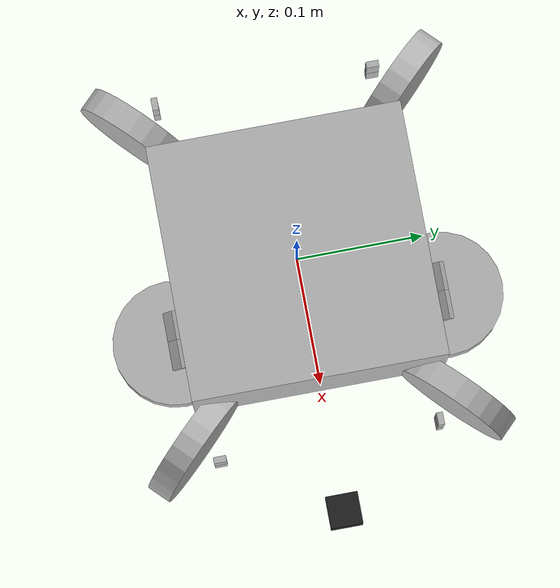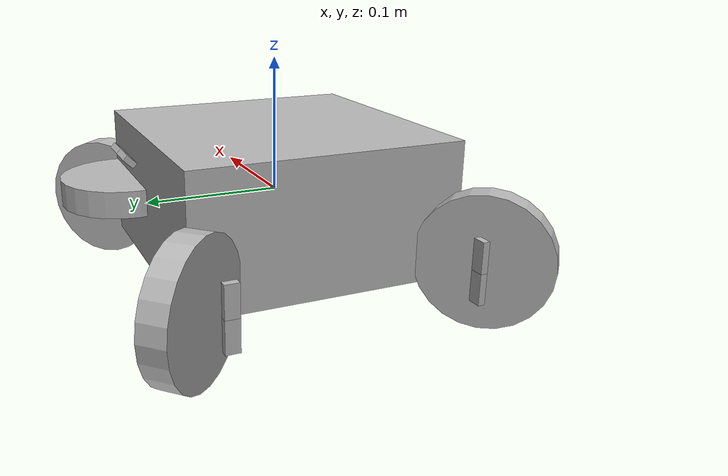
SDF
<sdf version='1.11'>
  <model name='BlueRov2'>
    <link name='base_link'>
      <inertial>
        <pose>1.0777634075990091e-07 0 -0.099998704461718352 0 0 0</pose>
        <mass>9.0001199999999955</mass>
        <inertia>
          <ixx>1.0010225034748941</ixx>
          <ixy>1.3552527156068811e-20</ixy>
          <ixz>-9.6998743327866735e-08</ixz>
          <iyy>1.001202477519789</iyy>
          <iyz>0</iyz>
          <izz>1.000842620044895</izz>
        </inertia>
      </inertial>
      <collision name='base_link_collision'>
        <pose>0 0 0 0 0 0</pose>
        <geometry>
          <box>
            <size>0.29999999999999999 0.29999999999999999 0.10000000000000001</size>
          </box>
        </geometry>
      </collision>
      <visual name='base_link_visual'>
        <pose>0 0 0 0 0 0</pose>
        <geometry>
          <box>
            <size>0.20000000000000001 0.20000000000000001 0.10000000000000001</size>
          </box>
        </geometry>
      </visual>
      <visual name='base_link_fixed_joint_lump__cil_visual_1'>
        <pose>0.12500000091892241 -0.10500000091892241 -0.028499999999999991 2.3561944767948968 1.5707963267948966 0</pose>
        <geometry>
          <cylinder>
            <length>0.02</length>
            <radius>0.048500000000000001</radius>
          </cylinder>
        </geometry>
      </visual>
      <visual name='base_link_fixed_joint_lump__cil_visual_2'>
        <pose>0.1249999990810776 0.1049999990810777 -0.028499999999999991 -2.3561944232051029 1.5707963267948966 0</pose>
        <geometry>
          <cylinder>
            <length>0.02</length>
            <radius>0.048500000000000001</radius>
          </cylinder>
        </geometry>
      </visual>
      <visual name='base_link_fixed_joint_lump__cil_visual_3'>
        <pose>-0.12499999908108 -0.1049999990810753 -0.028499999999999991 0.7853955767948968 1.5707963267948966 0</pose>
        <geometry>
          <cylinder>
            <length>0.02</length>
            <radius>0.048500000000000001</radius>
          </cylinder>
        </geometry>
      </visual>
      <visual name='base_link_fixed_joint_lump__cil_visual_4'>
        <pose>-0.1250000009189223 0.10500000091892241 -0.028499999999999991 -0.78539812320510305 1.5707963267948966 0</pose>
        <geometry>
          <cylinder>
            <length>0.02</length>
            <radius>0.048500000000000001</radius>
          </cylinder>
        </geometry>
      </visual>
      <visual name='base_link_fixed_joint_lump__cil_visual_5'>
        <pose>0.048500000000000001 -0.105 0 3.1415926000000001 0 0</pose>
        <geometry>
          <cylinder>
            <length>0.02</length>
            <radius>0.048500000000000001</radius>
          </cylinder>
        </geometry>
      </visual>
      <visual name='base_link_fixed_joint_lump__cil_visual_6'>
        <pose>0.048500000000000001 0.105 0 3.1415926000000001 0 0</pose>
        <geometry>
          <cylinder>
            <length>0.02</length>
            <radius>0.048500000000000001</radius>
          </cylinder>
        </geometry>
      </visual>
    </link>
    <joint name='base_link_imu_sensor_joint' type='fixed'>
      <pose relative_to='base_link'>0 0 0 0 0 0</pose>
      <parent>base_link</parent>
      <child>base_link_imu_sensor_link</child>
      <axis>
        <dynamics>
          <spring_reference>0</spring_reference>
          <spring_stiffness>0</spring_stiffness>
        </dynamics>
        <xyz>0 0 1</xyz>
        <limit>
          <lower>-inf</lower>
          <upper>inf</upper>
        </limit>
      </axis>
      <physics>
        <ode>
          <limit>
            <cfm>0</cfm>
            <erp>0.20000000000000001</erp>
          </limit>
        </ode>
      </physics>
    </joint>
    <link name='base_link_imu_sensor_link'>
      <pose relative_to='base_link_imu_sensor_joint'>0 0 0 0 0 0</pose>
      <inertial>
        <pose>0 0 0 0 0 0</pose>
        <mass>0.00035</mass>
        <inertia>
          <ixx>1</ixx>
          <ixy>0</ixy>
          <ixz>0</ixz>
          <iyy>1</iyy>
          <iyz>0</iyz>
          <izz>1</izz>
        </inertia>
      </inertial>
      <sensor name='base_link_imu_sensor' type='imu'>
        <always_on>true</always_on>
        <update_rate>100</update_rate>
        <imu>
          <angular_velocity>
            <x>
              <noise type='gaussian'>
                <mean>0</mean>
                <stddev>0.00020000000000000001</stddev>
              </noise>
            </x>
            <y>
              <noise type='gaussian'>
                <mean>0</mean>
                <stddev>0.00020000000000000001</stddev>
              </noise>
            </y>
            <z>
              <noise type='gaussian'>
                <mean>0</mean>
                <stddev>0.00020000000000000001</stddev>
              </noise>
            </z>
          </angular_velocity>
          <linear_acceleration>
            <x>
              <noise type='gaussian'>
                <mean>0</mean>
                <stddev>0.017000000000000001</stddev>
              </noise>
            </x>
            <y>
              <noise type='gaussian'>
                <mean>0</mean>
                <stddev>0.017000000000000001</stddev>
              </noise>
            </y>
            <z>
              <noise type='gaussian'>
                <mean>0</mean>
                <stddev>0.017000000000000001</stddev>
              </noise>
            </z>
          </linear_acceleration>
        </imu>
        <plugin name='gz::sim::systems::Imu' filename='gz-sim-imu-system'/>
      </sensor>
    </link>
    <joint name='thruster1_propeler_joint' type='revolute'>
      <pose relative_to='base_link'>0.1426776697380791 -0.087322330678751697 -0.028500000000000001 2.3561944499999998 1.5707963057214724 0</pose>
      <parent>base_link</parent>
      <child>thruster1_propeler</child>
      <axis>
        <xyz>0 0 1</xyz>
        <limit>
          <lower>-inf</lower>
          <upper>inf</upper>
        </limit>
        <dynamics>
          <damping>0.01</damping>
          <friction>0.01</friction>
          <spring_reference>0</spring_reference>
          <spring_stiffness>0</spring_stiffness>
        </dynamics>
      </axis>
    </joint>
    <link name='thruster1_propeler'>
      <pose relative_to='thruster1_propeler_joint'>0 0 0 0 0 0</pose>
      <inertial>
        <pose>0 0 0 0 0 0</pose>
        <mass>0.001</mass>
        <inertia>
          <ixx>0.001</ixx>
          <ixy>0</ixy>
          <ixz>0</ixz>
          <iyy>0.001</iyy>
          <iyz>0</iyz>
          <izz>0.001</izz>
        </inertia>
      </inertial>
      <visual name='thruster1_propeler_fixed_joint_lump__blade1_visual'>
        <pose>0.01125 0 0 0.78000000000000003 0 0</pose>
        <geometry>
          <box>
            <size>0.022499999999999999 0.01 0.0050000000000000001</size>
          </box>
        </geometry>
      </visual>
      <visual name='thruster1_propeler_fixed_joint_lump__blade2_visual_1'>
        <pose>-0.01125 0 0 0.78000000000000003 0 0</pose>
        <geometry>
          <box>
            <size>0.022499999999999999 0.01 0.0050000000000000001</size>
          </box>
        </geometry>
      </visual>
    </link>
    <joint name='thruster2_propeler_joint' type='revolute'>
      <pose relative_to='base_link'>0.1426776679002342 0.087322328840907015 -0.028500000000000011 -2.3561944499999998 1.5707963118937354 0</pose>
      <parent>base_link</parent>
      <child>thruster2_propeler</child>
      <axis>
        <xyz>0 0 1</xyz>
        <limit>
          <lower>-inf</lower>
          <upper>inf</upper>
        </limit>
        <dynamics>
          <damping>0.01</damping>
          <friction>0.01</friction>
          <spring_reference>0</spring_reference>
          <spring_stiffness>0</spring_stiffness>
        </dynamics>
      </axis>
    </joint>
    <link name='thruster2_propeler'>
      <pose relative_to='thruster2_propeler_joint'>0 0 0 0 0 0</pose>
      <inertial>
        <pose>0 0 0 0 0 0</pose>
        <mass>0.001</mass>
        <inertia>
          <ixx>0.001</ixx>
          <ixy>0</ixy>
          <ixz>0</ixz>
          <iyy>0.001</iyy>
          <iyz>0</iyz>
          <izz>0.001</izz>
        </inertia>
      </inertial>
      <visual name='thruster2_propeler_fixed_joint_lump__blade1_visual'>
        <pose>0.01125 0 0 0.78000000000000003 0 0</pose>
        <geometry>
          <box>
            <size>0.022499999999999999 0.01 0.0050000000000000001</size>
          </box>
        </geometry>
      </visual>
      <visual name='thruster2_propeler_fixed_joint_lump__blade2_visual_1'>
        <pose>-0.01125 0 0 0.78000000000000003 0 0</pose>
        <geometry>
          <box>
            <size>0.022499999999999999 0.01 0.0050000000000000001</size>
          </box>
        </geometry>
      </visual>
    </link>
    <joint name='thruster3_propeler_joint' type='revolute'>
      <pose relative_to='base_link'>-0.14267771480945979 -0.087322375750248371 -0.028500000000000001 0.78539555000000005 1.5707963118937354 0</pose>
      <parent>base_link</parent>
      <child>thruster3_propeler</child>
      <axis>
        <xyz>0 0 1</xyz>
        <limit>
          <lower>-inf</lower>
          <upper>inf</upper>
        </limit>
        <dynamics>
          <damping>0.01</damping>
          <friction>0.01</friction>
          <spring_reference>0</spring_reference>
          <spring_stiffness>0</spring_stiffness>
        </dynamics>
      </axis>
    </joint>
    <link name='thruster3_propeler'>
      <pose relative_to='thruster3_propeler_joint'>0 0 0 0 0 0</pose>
      <inertial>
        <pose>0 0 0 0 0 0</pose>
        <mass>0.001</mass>
        <inertia>
          <ixx>0.001</ixx>
          <ixy>0</ixy>
          <ixz>0</ixz>
          <iyy>0.001</iyy>
          <iyz>0</iyz>
          <izz>0.001</izz>
        </inertia>
      </inertial>
      <visual name='thruster3_propeler_fixed_joint_lump__blade1_visual'>
        <pose>0.01125 0 0 0.78000000000000003 0 0</pose>
        <geometry>
          <box>
            <size>0.022499999999999999 0.01 0.0050000000000000001</size>
          </box>
        </geometry>
      </visual>
      <visual name='thruster3_propeler_fixed_joint_lump__blade2_visual_1'>
        <pose>-0.01125 0 0 0.78000000000000003 0 0</pose>
        <geometry>
          <box>
            <size>0.022499999999999999 0.01 0.0050000000000000001</size>
          </box>
        </geometry>
      </visual>
    </link>
    <joint name='thruster4_propeler_joint' type='revolute'>
      <pose relative_to='base_link'>-0.1426776706854217 0.087322331626094388 -0.028499999999999991 -0.78539814999999935 1.5707963057214724 0</pose>
      <parent>base_link</parent>
      <child>thruster4_propeler</child>
      <axis>
        <xyz>0 0 1</xyz>
        <limit>
          <lower>-inf</lower>
          <upper>inf</upper>
        </limit>
        <dynamics>
          <damping>0.01</damping>
          <friction>0.01</friction>
          <spring_reference>0</spring_reference>
          <spring_stiffness>0</spring_stiffness>
        </dynamics>
      </axis>
    </joint>
    <link name='thruster4_propeler'>
      <pose relative_to='thruster4_propeler_joint'>0 0 0 0 0 0</pose>
      <inertial>
        <pose>0 0 0 0 0 0</pose>
        <mass>0.001</mass>
        <inertia>
          <ixx>0.001</ixx>
          <ixy>0</ixy>
          <ixz>0</ixz>
          <iyy>0.001</iyy>
          <iyz>0</iyz>
          <izz>0.001</izz>
        </inertia>
      </inertial>
      <visual name='thruster4_propeler_fixed_joint_lump__blade1_visual'>
        <pose>0.01125 0 0 0.78000000000000003 0 0</pose>
        <geometry>
          <box>
            <size>0.022499999999999999 0.01 0.0050000000000000001</size>
          </box>
        </geometry>
      </visual>
      <visual name='thruster4_propeler_fixed_joint_lump__blade2_visual_1'>
        <pose>-0.01125 0 0 0.78000000000000003 0 0</pose>
        <geometry>
          <box>
            <size>0.022499999999999999 0.01 0.0050000000000000001</size>
          </box>
        </geometry>
      </visual>
    </link>
    <joint name='thruster5_propeler_joint' type='revolute'>
      <pose relative_to='base_link'>0.048500000000000001 -0.10499999866025519 0.02499999999999997 3.1415926000000001 0 0</pose>
      <parent>base_link</parent>
      <child>thruster5_propeler</child>
      <axis>
        <xyz>0 0 1</xyz>
        <limit>
          <lower>-inf</lower>
          <upper>inf</upper>
        </limit>
        <dynamics>
          <damping>0.01</damping>
          <friction>0.01</friction>
          <spring_reference>0</spring_reference>
          <spring_stiffness>0</spring_stiffness>
        </dynamics>
      </axis>
    </joint>
    <link name='thruster5_propeler'>
      <pose relative_to='thruster5_propeler_joint'>0 0 0 0 0 0</pose>
      <inertial>
        <pose>0 0 0 0 0 0</pose>
        <mass>0.001</mass>
        <inertia>
          <ixx>0.001</ixx>
          <ixy>0</ixy>
          <ixz>0</ixz>
          <iyy>0.001</iyy>
          <iyz>0</iyz>
          <izz>0.001</izz>
        </inertia>
      </inertial>
      <visual name='thruster5_propeler_fixed_joint_lump__blade1_visual'>
        <pose>0.01125 0 0 0.78000000000000003 0 0</pose>
        <geometry>
          <box>
            <size>0.022499999999999999 0.01 0.0050000000000000001</size>
          </box>
        </geometry>
      </visual>
      <visual name='thruster5_propeler_fixed_joint_lump__blade2_visual_1'>
        <pose>-0.01125 0 0 0.78000000000000003 0 0</pose>
        <geometry>
          <box>
            <size>0.022499999999999999 0.01 0.0050000000000000001</size>
          </box>
        </geometry>
      </visual>
    </link>
    <joint name='thruster6_propeler_joint' type='revolute'>
      <pose relative_to='base_link'>0.048500000000000001 0.1050000013397448 0.02499999999999997 3.1415926000000001 0 0</pose>
      <parent>base_link</parent>
      <child>thruster6_propeler</child>
      <axis>
        <xyz>0 0 1</xyz>
        <limit>
          <lower>-inf</lower>
          <upper>inf</upper>
        </limit>
        <dynamics>
          <damping>0.01</damping>
          <friction>0.01</friction>
          <spring_reference>0</spring_reference>
          <spring_stiffness>0</spring_stiffness>
        </dynamics>
      </axis>
    </joint>
    <link name='thruster6_propeler'>
      <pose relative_to='thruster6_propeler_joint'>0 0 0 0 0 0</pose>
      <inertial>
        <pose>0 0 0 0 0 0</pose>
        <mass>0.001</mass>
        <inertia>
          <ixx>0.001</ixx>
          <ixy>0</ixy>
          <ixz>0</ixz>
          <iyy>0.001</iyy>
          <iyz>0</iyz>
          <izz>0.001</izz>
        </inertia>
      </inertial>
      <visual name='thruster6_propeler_fixed_joint_lump__blade1_visual'>
        <pose>0.01125 0 0 0.78000000000000003 0 0</pose>
        <geometry>
          <box>
            <size>0.022499999999999999 0.01 0.0050000000000000001</size>
          </box>
        </geometry>
      </visual>
      <visual name='thruster6_propeler_fixed_joint_lump__blade2_visual_1'>
        <pose>-0.01125 0 0 0.78000000000000003 0 0</pose>
        <geometry>
          <box>
            <size>0.022499999999999999 0.01 0.0050000000000000001</size>
          </box>
        </geometry>
      </visual>
    </link>
    <joint name='camera_joint' type='fixed'>
      <pose relative_to='base_link'>0.20000000000000001 0 0 0 0 0</pose>
      <parent>base_link</parent>
      <child>camera_link</child>
      <axis>
        <dynamics>
          <spring_reference>0</spring_reference>
          <spring_stiffness>0</spring_stiffness>
        </dynamics>
        <xyz>0 0 1</xyz>
        <limit>
          <lower>-inf</lower>
          <upper>inf</upper>
        </limit>
      </axis>
      <physics>
        <ode>
          <limit>
            <cfm>0</cfm>
            <erp>0.20000000000000001</erp>
          </limit>
        </ode>
      </physics>
    </joint>
    <link name='camera_link'>
      <pose relative_to='camera_joint'>0 0 0 0 0 0</pose>
      <inertial>
        <pose>0 0.069000000000000006 -0.047 0 0 0</pose>
        <mass>0.0001</mass>
        <inertia>
          <ixx>1</ixx>
          <ixy>0</ixy>
          <ixz>0</ixz>
          <iyy>1</iyy>
          <iyz>0</iyz>
          <izz>1</izz>
        </inertia>
      </inertial>
      <visual name='camera_link_visual'>
        <pose>0 0 0 0 0 0</pose>
        <geometry>
          <box>
            <size>0.025000000000000001 0.025000000000000001 0.025000000000000001</size>
          </box>
        </geometry>
        <material>
          <script>
            <name>Gazebo/Black</name>
            <uri>file://media/materials/scripts/gazebo.material</uri>
          </script>
        </material>
      </visual>
      <sensor name='camera_depth' type='depth'>
        <always_on>true</always_on>
        <visualize>true</visualize>
        <update_rate>30</update_rate>
        <camera name='intel_realsense_r200'>
          <horizontal_fov>1.0297400000000001</horizontal_fov>
          <image>
            <width>640</width>
            <height>480</height>
            <format>R8G8B8</format>
          </image>
          <clip>
            <near>0.050000000000000003</near>
            <far>50</far>
          </clip>
          <noise>
            <type>gaussian</type>
            <mean>0</mean>
            <stddev>0.0070000000000000001</stddev>
          </noise>
        </camera>
        <plugin name='camera_driver' filename='libgazebo_ros_camera.so'>
          <camera_name>camera</camera_name>
          <frame_name>camera_rgb_optical_frame</frame_name>
          <ros/>
        </plugin>
      </sensor>
    </link>
    <joint name='camera_rgb_optical_joint' type='fixed'>
      <pose relative_to='camera_link'>0 0 0 -1.5707963267948959 -5.5511151231257827e-17 -1.5707963267948959</pose>
      <parent>camera_link</parent>
      <child>camera_rgb_optical_frame</child>
      <axis>
        <dynamics>
          <spring_reference>0</spring_reference>
          <spring_stiffness>0</spring_stiffness>
        </dynamics>
        <xyz>0 0 1</xyz>
        <limit>
          <lower>-inf</lower>
          <upper>inf</upper>
        </limit>
      </axis>
      <physics>
        <ode>
          <limit>
            <cfm>0</cfm>
            <erp>0.20000000000000001</erp>
          </limit>
        </ode>
      </physics>
    </joint>
    <link name='camera_rgb_optical_frame'>
      <pose relative_to='camera_rgb_optical_joint'>0 0 0 0 0 0</pose>
      <inertial>
        <pose>0 0.069000000000000006 -0.047 0 0 0</pose>
        <mass>0.035000000000000003</mass>
        <inertia>
          <ixx>1</ixx>
          <ixy>0</ixy>
          <ixz>0</ixz>
          <iyy>1</iyy>
          <iyz>0</iyz>
          <izz>1</izz>
        </inertia>
      </inertial>
    </link>
    <plugin name='gz::sim::systems::LiftDrag' filename='gz-sim-lift-drag-system'>
      <a0>0.3</a0>
      <alpha_stall>1.4</alpha_stall>
      <cla>4.2500</cla>
      <cda>0.10</cda>
      <cma>0.00</cma>
      <cla_stall>-0.025</cla_stall>
      <cda_stall>0.0</cda_stall>
      <cma_stall>0.0</cma_stall>
      <area>0.002</area>
      <air_density>1000</air_density>
      <cp>-0.084 0 0</cp>
      <forward>0 -1 0</forward>
      <upward>0 0 -1</upward>
      <link_name>thruster1_propeler</link_name>
    </plugin>
    <plugin name='gz::sim::systems::LiftDrag' filename='gz-sim-lift-drag-system'>
      <a0>0.3</a0>
      <alpha_stall>1.4</alpha_stall>
      <cla>4.2500</cla>
      <cda>0.10</cda>
      <cma>0.00</cma>
      <cla_stall>-0.025</cla_stall>
      <cda_stall>0.0</cda_stall>
      <cma_stall>0.0</cma_stall>
      <area>0.002</area>
      <air_density>1000</air_density>
      <cp>-0.084 0 0</cp>
      <forward>0 -1 0</forward>
      <upward>0 0 -1</upward>
      <link_name>thruster2_propeler</link_name>
    </plugin>
    <plugin name='gz::sim::systems::LiftDrag' filename='gz-sim-lift-drag-system'>
      <a0>0.3</a0>
      <alpha_stall>1.4</alpha_stall>
      <cla>4.2500</cla>
      <cda>0.10</cda>
      <cma>0.00</cma>
      <cla_stall>-0.025</cla_stall>
      <cda_stall>0.0</cda_stall>
      <cma_stall>0.0</cma_stall>
      <area>0.002</area>
      <air_density>1000</air_density>
      <cp>-0.084 0 0</cp>
      <forward>0 -1 0</forward>
      <upward>0 0 -1</upward>
      <link_name>thruster3_propeler</link_name>
    </plugin>
    <plugin name='gz::sim::systems::LiftDrag' filename='gz-sim-lift-drag-system'>
      <a0>0.3</a0>
      <alpha_stall>1.4</alpha_stall>
      <cla>4.2500</cla>
      <cda>0.10</cda>
      <cma>0.00</cma>
      <cla_stall>-0.025</cla_stall>
      <cda_stall>0.0</cda_stall>
      <cma_stall>0.0</cma_stall>
      <area>0.002</area>
      <air_density>1000</air_density>
      <cp>-0.084 0 0</cp>
      <forward>0 -1 0</forward>
      <upward>0 0 -1</upward>
      <link_name>thruster4_propeler</link_name>
    </plugin>
    <plugin name='gz::sim::systems::LiftDrag' filename='gz-sim-lift-drag-system'>
      <a0>0.3</a0>
      <alpha_stall>1.4</alpha_stall>
      <cla>4.2500</cla>
      <cda>0.10</cda>
      <cma>0.00</cma>
      <cla_stall>-0.025</cla_stall>
      <cda_stall>0.0</cda_stall>
      <cma_stall>0.0</cma_stall>
      <area>0.002</area>
      <air_density>1000</air_density>
      <cp>-0.084 0 0</cp>
      <forward>0 -1 0</forward>
      <upward>0 0 -1</upward>
      <link_name>thruster5_propeler</link_name>
    </plugin>
    <plugin name='gz::sim::systems::LiftDrag' filename='gz-sim-lift-drag-system'>
      <a0>0.3</a0>
      <alpha_stall>1.4</alpha_stall>
      <cla>4.2500</cla>
      <cda>0.10</cda>
      <cma>0.00</cma>
      <cla_stall>-0.025</cla_stall>
      <cda_stall>0.0</cda_stall>
      <cma_stall>0.0</cma_stall>
      <area>0.002</area>
      <air_density>1000</air_density>
      <cp>-0.084 0 0</cp>
      <forward>0 -1 0</forward>
      <upward>0 0 -1</upward>
      <link_name>thruster6_propeler</link_name>
    </plugin>
    <plugin name='ArduPilotPlugin' filename='libArduPilotPlugin.so'>
      <fdm_addr>127.0.0.1</fdm_addr>
      <fdm_port_in>9002</fdm_port_in>
      <fdm_port_out>9003</fdm_port_out>
      <imuName>base_link_imu_sensor</imuName>
      <connectionTimeoutMaxCount>5</connectionTimeoutMaxCount>
      <control channel='0'>
        <type>VELOCITY</type>
        <offset>-0.5</offset>
        <p_gain>1</p_gain>
        <i_gain>0</i_gain>
        <d_gain>0</d_gain>
        <i_max>0</i_max>
        <i_min>0</i_min>
        <cmd_max>0.5</cmd_max>
        <cmd_min>-0.5</cmd_min>
        <jointName>thruster1_propeler_joint</jointName>
        <multiplier>102</multiplier>
      </control>
      <control channel='1'>
        <type>VELOCITY</type>
        <offset>-0.5</offset>
        <p_gain>1</p_gain>
        <i_gain>0</i_gain>
        <d_gain>0</d_gain>
        <i_max>0</i_max>
        <i_min>0</i_min>
        <cmd_max>0.5</cmd_max>
        <cmd_min>-0.5</cmd_min>
        <jointName>thruster2_propeler_joint</jointName>
        <multiplier>102</multiplier>
      </control>
      <control channel='2'>
        <type>VELOCITY</type>
        <offset>-0.5</offset>
        <p_gain>1</p_gain>
        <i_gain>0</i_gain>
        <d_gain>0</d_gain>
        <i_max>0</i_max>
        <i_min>0</i_min>
        <cmd_max>0.5</cmd_max>
        <cmd_min>-0.5</cmd_min>
        <jointName>thruster3_propeler_joint</jointName>
        <multiplier>102</multiplier>
      </control>
      <control channel='3'>
        <type>VELOCITY</type>
        <offset>-0.5</offset>
        <p_gain>1</p_gain>
        <i_gain>0</i_gain>
        <d_gain>0</d_gain>
        <i_max>0</i_max>
        <i_min>0</i_min>
        <cmd_max>0.5</cmd_max>
        <cmd_min>-0.5</cmd_min>
        <jointName>thruster4_propeler_joint</jointName>
        <multiplier>102</multiplier>
      </control>
      <control channel='4'>
        <type>VELOCITY</type>
        <offset>-0.5</offset>
        <p_gain>1</p_gain>
        <i_gain>0</i_gain>
        <d_gain>0</d_gain>
        <i_max>0</i_max>
        <i_min>0</i_min>
        <cmd_max>0.5</cmd_max>
        <cmd_min>-0.5</cmd_min>
        <jointName>thruster5_propeler_joint</jointName>
        <multiplier>102</multiplier>
      </control>
      <control channel='5'>
        <type>VELOCITY</type>
        <offset>-0.5</offset>
        <p_gain>1</p_gain>
        <i_gain>0</i_gain>
        <d_gain>0</d_gain>
        <i_max>0</i_max>
        <i_min>0</i_min>
        <cmd_max>0.5</cmd_max>
        <cmd_min>-0.5</cmd_min>
        <jointName>thruster6_propeler_joint</jointName>
        <multiplier>102</multiplier>
      </control>
    </plugin>
    <plugin name='gz::sim::systems::Hydrodynamics' filename='gz-sim-hydrodynamics-system'>
      <link_name>base_link</link_name>
      <xDotU>1</xDotU>
      <yDotV>1</yDotV>
      <zDotW>2.5</zDotW>
      <kDotP>0.075</kDotP>
      <mDotQ>0.075</mDotQ>
      <nDotR>0.135</nDotR>
      <xUabsU>-20</xUabsU>
      <xU>-5</xU>
      <yVabsV>-20</yVabsV>
      <yV>-5</yV>
      <zWabsW>-50</zWabsW>
      <zW>-5</zW>
      <kPabsP>-0.5</kPabsP>
      <kP>-0.05</kP>
      <mQabsQ>-0.5</mQabsQ>
      <mQ>-0.05</mQ>
      <nRabsR>-1</nRabsR>
      <nR>-0.1</nR>
    </plugin>
    <frame name='thruster1_thruster_joint' attached_to='thruster1_base_link'>
      <pose>0.048500000000000001 0 0 0 0 0</pose>
    </frame>
    <frame name='thruster1_thruster' attached_to='thruster1_thruster_joint'>
      <pose>0 0 0 0 0 0</pose>
    </frame>
    <frame name='base_link_to_thruster1_base_link_joint' attached_to='base_link'>
      <pose>0.125 -0.105 0.02 2.3561944499999998 1.5707963057214724 0</pose>
    </frame>
    <frame name='thruster1_base_link' attached_to='base_link_to_thruster1_base_link_joint'>
      <pose>0 0 0 0 0 0</pose>
    </frame>
    <frame name='thruster2_thruster_joint' attached_to='thruster2_base_link'>
      <pose>0.048500000000000001 0 0 0 0 0</pose>
    </frame>
    <frame name='thruster2_thruster' attached_to='thruster2_thruster_joint'>
      <pose>0 0 0 0 0 0</pose>
    </frame>
    <frame name='base_link_to_thruster2_base_link_joint' attached_to='base_link'>
      <pose>0.125 0.105 0.02 -2.3561944499999998 1.5707963267948966 0</pose>
    </frame>
    <frame name='thruster2_base_link' attached_to='base_link_to_thruster2_base_link_joint'>
      <pose>0 0 0 0 0 0</pose>
    </frame>
    <frame name='thruster3_thruster_joint' attached_to='thruster3_base_link'>
      <pose>0.048500000000000001 0 0 0 0 0</pose>
    </frame>
    <frame name='thruster3_thruster' attached_to='thruster3_thruster_joint'>
      <pose>0 0 0 0 0 0</pose>
    </frame>
    <frame name='base_link_to_thruster3_base_link_joint' attached_to='base_link'>
      <pose>-0.125 -0.105 0.02 0.78539555000000028 1.5707963267948966 0</pose>
    </frame>
    <frame name='thruster3_base_link' attached_to='base_link_to_thruster3_base_link_joint'>
      <pose>0 0 0 0 0 0</pose>
    </frame>
    <frame name='thruster4_thruster_joint' attached_to='thruster4_base_link'>
      <pose>0.048500000000000001 0 0 0 0 0</pose>
    </frame>
    <frame name='thruster4_thruster' attached_to='thruster4_thruster_joint'>
      <pose>0 0 0 0 0 0</pose>
    </frame>
    <frame name='base_link_to_thruster4_base_link_joint' attached_to='base_link'>
      <pose>-0.125 0.105 0.02 -0.78539814999999935 1.5707963267948966 0</pose>
    </frame>
    <frame name='thruster4_base_link' attached_to='base_link_to_thruster4_base_link_joint'>
      <pose>0 0 0 0 0 0</pose>
    </frame>
    <frame name='thruster5_thruster_joint' attached_to='thruster5_base_link'>
      <pose>0.048500000000000001 0 0 0 0 0</pose>
    </frame>
    <frame name='thruster5_thruster' attached_to='thruster5_thruster_joint'>
      <pose>0 0 0 0 0 0</pose>
    </frame>
    <frame name='base_link_to_thruster5_base_link_joint' attached_to='base_link'>
      <pose>0 -0.105 0 3.1415926000000001 0 0</pose>
    </frame>
    <frame name='thruster5_base_link' attached_to='base_link_to_thruster5_base_link_joint'>
      <pose>0 0 0 0 0 0</pose>
    </frame>
    <frame name='thruster6_thruster_joint' attached_to='thruster6_base_link'>
      <pose>0.048500000000000001 0 0 0 0 0</pose>
    </frame>
    <frame name='thruster6_thruster' attached_to='thruster6_thruster_joint'>
      <pose>0 0 0 0 0 0</pose>
    </frame>
    <frame name='base_link_to_thruster6_base_link_joint' attached_to='base_link'>
      <pose>0 0.105 0 3.1415926000000001 0 0</pose>
    </frame>
    <frame name='thruster6_base_link' attached_to='base_link_to_thruster6_base_link_joint'>
      <pose>0 0 0 0 0 0</pose>
    </frame>
  </model>
</sdf>
